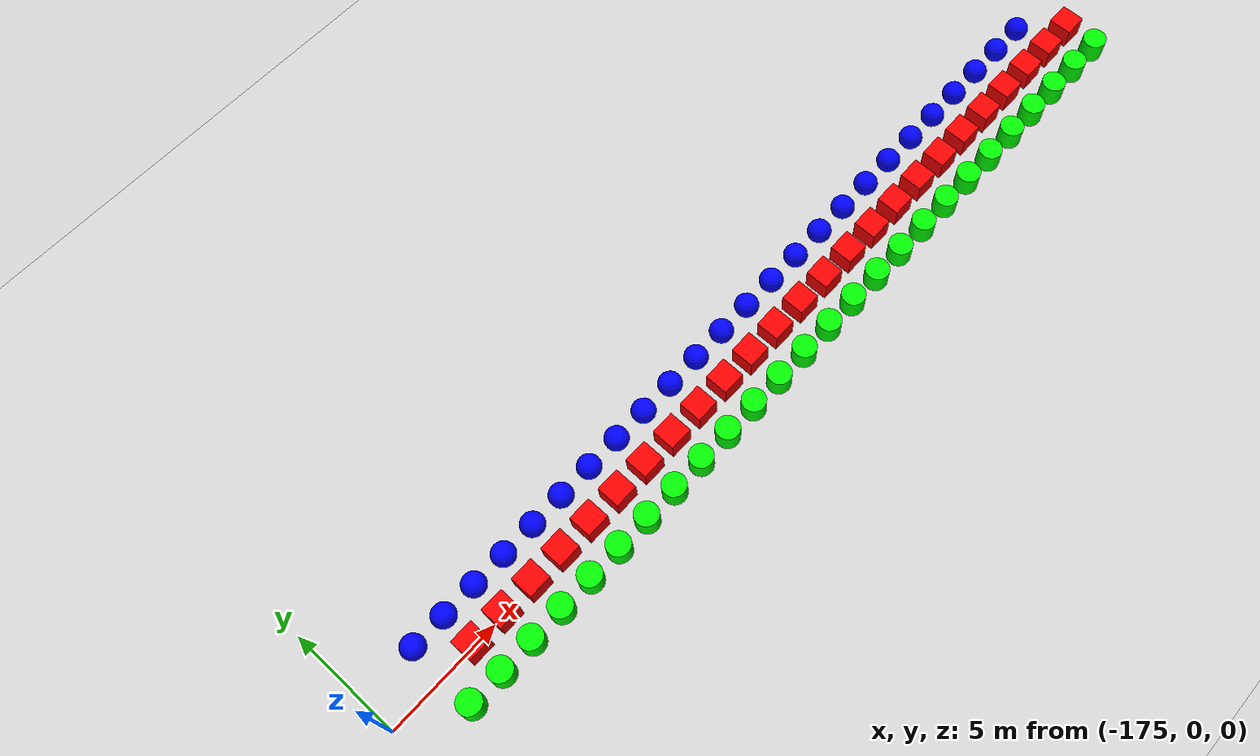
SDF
<sdf version="1.6">
 <world name="shapes">
  <model name="ground_plane">
   <static>true</static>
   <link name="link">
    <collision name="collision">
     <geometry><plane><normal>0 0 1</normal><size>100 100</size></plane></geometry>
    </collision>
    <visual name="visual">
     <geometry><plane><normal>0 0 1</normal><size>100 100</size></plane></geometry>
     <material>
      <ambient>0.8 0.8 0.8 1</ambient>
      <diffuse>0.8 0.8 0.8 1</diffuse>
      <specular>0.8 0.8 0.8 1</specular>
     </material>
    </visual>
   </link>
  </model>
  <model name="cylinder_385">
   <static>false</static>
   <pose>-172.5 -1.5 0.5 0 0 0</pose>
   <link name="cylinder_link">
    <inertial>
     <inertia><ixx>2</ixx><ixy>0</ixy><ixz>0</ixz><iyy>2</iyy><iyz>0</iyz><izz>2</izz></inertia>
     <mass>2.0</mass>
    </inertial>
    <collision name="cylinder_collision">
     <geometry><cylinder><radius>0.5</radius><length>1.0</length></cylinder></geometry>
    </collision>
    <visual name="cylinder_visual">
     <geometry><cylinder><radius>0.5</radius><length>1.0</length></cylinder></geometry>
     <material><ambient>0 1 0 1</ambient><diffuse>0 1 0 1</diffuse><specular>0 1 0 1</specular></material>
    </visual>
   </link>
  </model>
  <model name="sphere_385">
   <static>false</static>
   <pose>-172.5 1.5 0.5 0 0 0</pose>
   <link name="sphere_link">
    <inertial>
     <inertia><ixx>3</ixx><ixy>0</ixy><ixz>0</ixz><iyy>3</iyy><iyz>0</iyz><izz>3</izz></inertia>
     <mass>3.0</mass>
    </inertial>
    <collision name="sphere_collision"><geometry><sphere><radius>0.5</radius></sphere></geometry></collision>
    <visual name="sphere_visual">
     <geometry><sphere><radius>0.5</radius></sphere></geometry>
     <material><ambient>0 0 1 1</ambient><diffuse>0 0 1 1</diffuse><specular>0 0 1 1</specular></material>
    </visual>
   </link>
  </model>
  <model name="box_386">
   <static>false</static>
   <pose>-171.0 0 0.5 0 0 0</pose>
   <link name="box_link">
    <inertial>
     <inertia><ixx>1</ixx><ixy>0</ixy><ixz>0</ixz><iyy>1</iyy><iyz>0</iyz><izz>1</izz></inertia>
     <mass>1.0</mass>
    </inertial>
    <collision name="box_collision"><geometry><box><size>1 1 1</size></box></geometry></collision>
    <visual name="box_visual">
     <geometry><box><size>1 1 1</size></box></geometry>
     <material><ambient>1 0 0 1</ambient><diffuse>1 0 0 1</diffuse><specular>1 0 0 1</specular></material>
    </visual>
   </link>
  </model>
  <model name="cylinder_386">
   <static>false</static>
   <pose>-171.0 -1.5 0.5 0 0 0</pose>
   <link name="cylinder_link">
    <inertial>
     <inertia><ixx>2</ixx><ixy>0</ixy><ixz>0</ixz><iyy>2</iyy><iyz>0</iyz><izz>2</izz></inertia>
     <mass>2.0</mass>
    </inertial>
    <collision name="cylinder_collision">
     <geometry><cylinder><radius>0.5</radius><length>1.0</length></cylinder></geometry>
    </collision>
    <visual name="cylinder_visual">
     <geometry><cylinder><radius>0.5</radius><length>1.0</length></cylinder></geometry>
     <material><ambient>0 1 0 1</ambient><diffuse>0 1 0 1</diffuse><specular>0 1 0 1</specular></material>
    </visual>
   </link>
  </model>
  <model name="sphere_386">
   <static>false</static>
   <pose>-171.0 1.5 0.5 0 0 0</pose>
   <link name="sphere_link">
    <inertial>
     <inertia><ixx>3</ixx><ixy>0</ixy><ixz>0</ixz><iyy>3</iyy><iyz>0</iyz><izz>3</izz></inertia>
     <mass>3.0</mass>
    </inertial>
    <collision name="sphere_collision"><geometry><sphere><radius>0.5</radius></sphere></geometry></collision>
    <visual name="sphere_visual">
     <geometry><sphere><radius>0.5</radius></sphere></geometry>
     <material><ambient>0 0 1 1</ambient><diffuse>0 0 1 1</diffuse><specular>0 0 1 1</specular></material>
    </visual>
   </link>
  </model>
  <model name="box_387">
   <static>false</static>
   <pose>-169.5 0 0.5 0 0 0</pose>
   <link name="box_link">
    <inertial>
     <inertia><ixx>1</ixx><ixy>0</ixy><ixz>0</ixz><iyy>1</iyy><iyz>0</iyz><izz>1</izz></inertia>
     <mass>1.0</mass>
    </inertial>
    <collision name="box_collision"><geometry><box><size>1 1 1</size></box></geometry></collision>
    <visual name="box_visual">
     <geometry><box><size>1 1 1</size></box></geometry>
     <material><ambient>1 0 0 1</ambient><diffuse>1 0 0 1</diffuse><specular>1 0 0 1</specular></material>
    </visual>
   </link>
  </model>
  <model name="cylinder_387">
   <static>false</static>
   <pose>-169.5 -1.5 0.5 0 0 0</pose>
   <link name="cylinder_link">
    <inertial>
     <inertia><ixx>2</ixx><ixy>0</ixy><ixz>0</ixz><iyy>2</iyy><iyz>0</iyz><izz>2</izz></inertia>
     <mass>2.0</mass>
    </inertial>
    <collision name="cylinder_collision">
     <geometry><cylinder><radius>0.5</radius><length>1.0</length></cylinder></geometry>
    </collision>
    <visual name="cylinder_visual">
     <geometry><cylinder><radius>0.5</radius><length>1.0</length></cylinder></geometry>
     <material><ambient>0 1 0 1</ambient><diffuse>0 1 0 1</diffuse><specular>0 1 0 1</specular></material>
    </visual>
   </link>
  </model>
  <model name="sphere_387">
   <static>false</static>
   <pose>-169.5 1.5 0.5 0 0 0</pose>
   <link name="sphere_link">
    <inertial>
     <inertia><ixx>3</ixx><ixy>0</ixy><ixz>0</ixz><iyy>3</iyy><iyz>0</iyz><izz>3</izz></inertia>
     <mass>3.0</mass>
    </inertial>
    <collision name="sphere_collision"><geometry><sphere><radius>0.5</radius></sphere></geometry></collision>
    <visual name="sphere_visual">
     <geometry><sphere><radius>0.5</radius></sphere></geometry>
     <material><ambient>0 0 1 1</ambient><diffuse>0 0 1 1</diffuse><specular>0 0 1 1</specular></material>
    </visual>
   </link>
  </model>
  <model name="box_388">
   <static>false</static>
   <pose>-168.0 0 0.5 0 0 0</pose>
   <link name="box_link">
    <inertial>
     <inertia><ixx>1</ixx><ixy>0</ixy><ixz>0</ixz><iyy>1</iyy><iyz>0</iyz><izz>1</izz></inertia>
     <mass>1.0</mass>
    </inertial>
    <collision name="box_collision"><geometry><box><size>1 1 1</size></box></geometry></collision>
    <visual name="box_visual">
     <geometry><box><size>1 1 1</size></box></geometry>
     <material><ambient>1 0 0 1</ambient><diffuse>1 0 0 1</diffuse><specular>1 0 0 1</specular></material>
    </visual>
   </link>
  </model>
  <model name="cylinder_388">
   <static>false</static>
   <pose>-168.0 -1.5 0.5 0 0 0</pose>
   <link name="cylinder_link">
    <inertial>
     <inertia><ixx>2</ixx><ixy>0</ixy><ixz>0</ixz><iyy>2</iyy><iyz>0</iyz><izz>2</izz></inertia>
     <mass>2.0</mass>
    </inertial>
    <collision name="cylinder_collision">
     <geometry><cylinder><radius>0.5</radius><length>1.0</length></cylinder></geometry>
    </collision>
    <visual name="cylinder_visual">
     <geometry><cylinder><radius>0.5</radius><length>1.0</length></cylinder></geometry>
     <material><ambient>0 1 0 1</ambient><diffuse>0 1 0 1</diffuse><specular>0 1 0 1</specular></material>
    </visual>
   </link>
  </model>
  <model name="sphere_388">
   <static>false</static>
   <pose>-168.0 1.5 0.5 0 0 0</pose>
   <link name="sphere_link">
    <inertial>
     <inertia><ixx>3</ixx><ixy>0</ixy><ixz>0</ixz><iyy>3</iyy><iyz>0</iyz><izz>3</izz></inertia>
     <mass>3.0</mass>
    </inertial>
    <collision name="sphere_collision"><geometry><sphere><radius>0.5</radius></sphere></geometry></collision>
    <visual name="sphere_visual">
     <geometry><sphere><radius>0.5</radius></sphere></geometry>
     <material><ambient>0 0 1 1</ambient><diffuse>0 0 1 1</diffuse><specular>0 0 1 1</specular></material>
    </visual>
   </link>
  </model>
  <model name="box_389">
   <static>false</static>
   <pose>-166.5 0 0.5 0 0 0</pose>
   <link name="box_link">
    <inertial>
     <inertia><ixx>1</ixx><ixy>0</ixy><ixz>0</ixz><iyy>1</iyy><iyz>0</iyz><izz>1</izz></inertia>
     <mass>1.0</mass>
    </inertial>
    <collision name="box_collision"><geometry><box><size>1 1 1</size></box></geometry></collision>
    <visual name="box_visual">
     <geometry><box><size>1 1 1</size></box></geometry>
     <material><ambient>1 0 0 1</ambient><diffuse>1 0 0 1</diffuse><specular>1 0 0 1</specular></material>
    </visual>
   </link>
  </model>
  <model name="cylinder_389">
   <static>false</static>
   <pose>-166.5 -1.5 0.5 0 0 0</pose>
   <link name="cylinder_link">
    <inertial>
     <inertia><ixx>2</ixx><ixy>0</ixy><ixz>0</ixz><iyy>2</iyy><iyz>0</iyz><izz>2</izz></inertia>
     <mass>2.0</mass>
    </inertial>
    <collision name="cylinder_collision">
     <geometry><cylinder><radius>0.5</radius><length>1.0</length></cylinder></geometry>
    </collision>
    <visual name="cylinder_visual">
     <geometry><cylinder><radius>0.5</radius><length>1.0</length></cylinder></geometry>
     <material><ambient>0 1 0 1</ambient><diffuse>0 1 0 1</diffuse><specular>0 1 0 1</specular></material>
    </visual>
   </link>
  </model>
  <model name="sphere_389">
   <static>false</static>
   <pose>-166.5 1.5 0.5 0 0 0</pose>
   <link name="sphere_link">
    <inertial>
     <inertia><ixx>3</ixx><ixy>0</ixy><ixz>0</ixz><iyy>3</iyy><iyz>0</iyz><izz>3</izz></inertia>
     <mass>3.0</mass>
    </inertial>
    <collision name="sphere_collision"><geometry><sphere><radius>0.5</radius></sphere></geometry></collision>
    <visual name="sphere_visual">
     <geometry><sphere><radius>0.5</radius></sphere></geometry>
     <material><ambient>0 0 1 1</ambient><diffuse>0 0 1 1</diffuse><specular>0 0 1 1</specular></material>
    </visual>
   </link>
  </model>
  <model name="box_390">
   <static>false</static>
   <pose>-165.0 0 0.5 0 0 0</pose>
   <link name="box_link">
    <inertial>
     <inertia><ixx>1</ixx><ixy>0</ixy><ixz>0</ixz><iyy>1</iyy><iyz>0</iyz><izz>1</izz></inertia>
     <mass>1.0</mass>
    </inertial>
    <collision name="box_collision"><geometry><box><size>1 1 1</size></box></geometry></collision>
    <visual name="box_visual">
     <geometry><box><size>1 1 1</size></box></geometry>
     <material><ambient>1 0 0 1</ambient><diffuse>1 0 0 1</diffuse><specular>1 0 0 1</specular></material>
    </visual>
   </link>
  </model>
  <model name="cylinder_390">
   <static>false</static>
   <pose>-165.0 -1.5 0.5 0 0 0</pose>
   <link name="cylinder_link">
    <inertial>
     <inertia><ixx>2</ixx><ixy>0</ixy><ixz>0</ixz><iyy>2</iyy><iyz>0</iyz><izz>2</izz></inertia>
     <mass>2.0</mass>
    </inertial>
    <collision name="cylinder_collision">
     <geometry><cylinder><radius>0.5</radius><length>1.0</length></cylinder></geometry>
    </collision>
    <visual name="cylinder_visual">
     <geometry><cylinder><radius>0.5</radius><length>1.0</length></cylinder></geometry>
     <material><ambient>0 1 0 1</ambient><diffuse>0 1 0 1</diffuse><specular>0 1 0 1</specular></material>
    </visual>
   </link>
  </model>
  <model name="sphere_390">
   <static>false</static>
   <pose>-165.0 1.5 0.5 0 0 0</pose>
   <link name="sphere_link">
    <inertial>
     <inertia><ixx>3</ixx><ixy>0</ixy><ixz>0</ixz><iyy>3</iyy><iyz>0</iyz><izz>3</izz></inertia>
     <mass>3.0</mass>
    </inertial>
    <collision name="sphere_collision"><geometry><sphere><radius>0.5</radius></sphere></geometry></collision>
    <visual name="sphere_visual">
     <geometry><sphere><radius>0.5</radius></sphere></geometry>
     <material><ambient>0 0 1 1</ambient><diffuse>0 0 1 1</diffuse><specular>0 0 1 1</specular></material>
    </visual>
   </link>
  </model>
  <model name="box_391">
   <static>false</static>
   <pose>-163.5 0 0.5 0 0 0</pose>
   <link name="box_link">
    <inertial>
     <inertia><ixx>1</ixx><ixy>0</ixy><ixz>0</ixz><iyy>1</iyy><iyz>0</iyz><izz>1</izz></inertia>
     <mass>1.0</mass>
    </inertial>
    <collision name="box_collision"><geometry><box><size>1 1 1</size></box></geometry></collision>
    <visual name="box_visual">
     <geometry><box><size>1 1 1</size></box></geometry>
     <material><ambient>1 0 0 1</ambient><diffuse>1 0 0 1</diffuse><specular>1 0 0 1</specular></material>
    </visual>
   </link>
  </model>
  <model name="cylinder_391">
   <static>false</static>
   <pose>-163.5 -1.5 0.5 0 0 0</pose>
   <link name="cylinder_link">
    <inertial>
     <inertia><ixx>2</ixx><ixy>0</ixy><ixz>0</ixz><iyy>2</iyy><iyz>0</iyz><izz>2</izz></inertia>
     <mass>2.0</mass>
    </inertial>
    <collision name="cylinder_collision">
     <geometry><cylinder><radius>0.5</radius><length>1.0</length></cylinder></geometry>
    </collision>
    <visual name="cylinder_visual">
     <geometry><cylinder><radius>0.5</radius><length>1.0</length></cylinder></geometry>
     <material><ambient>0 1 0 1</ambient><diffuse>0 1 0 1</diffuse><specular>0 1 0 1</specular></material>
    </visual>
   </link>
  </model>
  <model name="sphere_391">
   <static>false</static>
   <pose>-163.5 1.5 0.5 0 0 0</pose>
   <link name="sphere_link">
    <inertial>
     <inertia><ixx>3</ixx><ixy>0</ixy><ixz>0</ixz><iyy>3</iyy><iyz>0</iyz><izz>3</izz></inertia>
     <mass>3.0</mass>
    </inertial>
    <collision name="sphere_collision"><geometry><sphere><radius>0.5</radius></sphere></geometry></collision>
    <visual name="sphere_visual">
     <geometry><sphere><radius>0.5</radius></sphere></geometry>
     <material><ambient>0 0 1 1</ambient><diffuse>0 0 1 1</diffuse><specular>0 0 1 1</specular></material>
    </visual>
   </link>
  </model>
  <model name="box_392">
   <static>false</static>
   <pose>-162.0 0 0.5 0 0 0</pose>
   <link name="box_link">
    <inertial>
     <inertia><ixx>1</ixx><ixy>0</ixy><ixz>0</ixz><iyy>1</iyy><iyz>0</iyz><izz>1</izz></inertia>
     <mass>1.0</mass>
    </inertial>
    <collision name="box_collision"><geometry><box><size>1 1 1</size></box></geometry></collision>
    <visual name="box_visual">
     <geometry><box><size>1 1 1</size></box></geometry>
     <material><ambient>1 0 0 1</ambient><diffuse>1 0 0 1</diffuse><specular>1 0 0 1</specular></material>
    </visual>
   </link>
  </model>
  <model name="cylinder_392">
   <static>false</static>
   <pose>-162.0 -1.5 0.5 0 0 0</pose>
   <link name="cylinder_link">
    <inertial>
     <inertia><ixx>2</ixx><ixy>0</ixy><ixz>0</ixz><iyy>2</iyy><iyz>0</iyz><izz>2</izz></inertia>
     <mass>2.0</mass>
    </inertial>
    <collision name="cylinder_collision">
     <geometry><cylinder><radius>0.5</radius><length>1.0</length></cylinder></geometry>
    </collision>
    <visual name="cylinder_visual">
     <geometry><cylinder><radius>0.5</radius><length>1.0</length></cylinder></geometry>
     <material><ambient>0 1 0 1</ambient><diffuse>0 1 0 1</diffuse><specular>0 1 0 1</specular></material>
    </visual>
   </link>
  </model>
  <model name="sphere_392">
   <static>false</static>
   <pose>-162.0 1.5 0.5 0 0 0</pose>
   <link name="sphere_link">
    <inertial>
     <inertia><ixx>3</ixx><ixy>0</ixy><ixz>0</ixz><iyy>3</iyy><iyz>0</iyz><izz>3</izz></inertia>
     <mass>3.0</mass>
    </inertial>
    <collision name="sphere_collision"><geometry><sphere><radius>0.5</radius></sphere></geometry></collision>
    <visual name="sphere_visual">
     <geometry><sphere><radius>0.5</radius></sphere></geometry>
     <material><ambient>0 0 1 1</ambient><diffuse>0 0 1 1</diffuse><specular>0 0 1 1</specular></material>
    </visual>
   </link>
  </model>
  <model name="box_393">
   <static>false</static>
   <pose>-160.5 0 0.5 0 0 0</pose>
   <link name="box_link">
    <inertial>
     <inertia><ixx>1</ixx><ixy>0</ixy><ixz>0</ixz><iyy>1</iyy><iyz>0</iyz><izz>1</izz></inertia>
     <mass>1.0</mass>
    </inertial>
    <collision name="box_collision"><geometry><box><size>1 1 1</size></box></geometry></collision>
    <visual name="box_visual">
     <geometry><box><size>1 1 1</size></box></geometry>
     <material><ambient>1 0 0 1</ambient><diffuse>1 0 0 1</diffuse><specular>1 0 0 1</specular></material>
    </visual>
   </link>
  </model>
  <model name="cylinder_393">
   <static>false</static>
   <pose>-160.5 -1.5 0.5 0 0 0</pose>
   <link name="cylinder_link">
    <inertial>
     <inertia><ixx>2</ixx><ixy>0</ixy><ixz>0</ixz><iyy>2</iyy><iyz>0</iyz><izz>2</izz></inertia>
     <mass>2.0</mass>
    </inertial>
    <collision name="cylinder_collision">
     <geometry><cylinder><radius>0.5</radius><length>1.0</length></cylinder></geometry>
    </collision>
    <visual name="cylinder_visual">
     <geometry><cylinder><radius>0.5</radius><length>1.0</length></cylinder></geometry>
     <material><ambient>0 1 0 1</ambient><diffuse>0 1 0 1</diffuse><specular>0 1 0 1</specular></material>
    </visual>
   </link>
  </model>
  <model name="sphere_393">
   <static>false</static>
   <pose>-160.5 1.5 0.5 0 0 0</pose>
   <link name="sphere_link">
    <inertial>
     <inertia><ixx>3</ixx><ixy>0</ixy><ixz>0</ixz><iyy>3</iyy><iyz>0</iyz><izz>3</izz></inertia>
     <mass>3.0</mass>
    </inertial>
    <collision name="sphere_collision"><geometry><sphere><radius>0.5</radius></sphere></geometry></collision>
    <visual name="sphere_visual">
     <geometry><sphere><radius>0.5</radius></sphere></geometry>
     <material><ambient>0 0 1 1</ambient><diffuse>0 0 1 1</diffuse><specular>0 0 1 1</specular></material>
    </visual>
   </link>
  </model>
  <model name="box_394">
   <static>false</static>
   <pose>-159.0 0 0.5 0 0 0</pose>
   <link name="box_link">
    <inertial>
     <inertia><ixx>1</ixx><ixy>0</ixy><ixz>0</ixz><iyy>1</iyy><iyz>0</iyz><izz>1</izz></inertia>
     <mass>1.0</mass>
    </inertial>
    <collision name="box_collision"><geometry><box><size>1 1 1</size></box></geometry></collision>
    <visual name="box_visual">
     <geometry><box><size>1 1 1</size></box></geometry>
     <material><ambient>1 0 0 1</ambient><diffuse>1 0 0 1</diffuse><specular>1 0 0 1</specular></material>
    </visual>
   </link>
  </model>
  <model name="cylinder_394">
   <static>false</static>
   <pose>-159.0 -1.5 0.5 0 0 0</pose>
   <link name="cylinder_link">
    <inertial>
     <inertia><ixx>2</ixx><ixy>0</ixy><ixz>0</ixz><iyy>2</iyy><iyz>0</iyz><izz>2</izz></inertia>
     <mass>2.0</mass>
    </inertial>
    <collision name="cylinder_collision">
     <geometry><cylinder><radius>0.5</radius><length>1.0</length></cylinder></geometry>
    </collision>
    <visual name="cylinder_visual">
     <geometry><cylinder><radius>0.5</radius><length>1.0</length></cylinder></geometry>
     <material><ambient>0 1 0 1</ambient><diffuse>0 1 0 1</diffuse><specular>0 1 0 1</specular></material>
    </visual>
   </link>
  </model>
  <model name="sphere_394">
   <static>false</static>
   <pose>-159.0 1.5 0.5 0 0 0</pose>
   <link name="sphere_link">
    <inertial>
     <inertia><ixx>3</ixx><ixy>0</ixy><ixz>0</ixz><iyy>3</iyy><iyz>0</iyz><izz>3</izz></inertia>
     <mass>3.0</mass>
    </inertial>
    <collision name="sphere_collision"><geometry><sphere><radius>0.5</radius></sphere></geometry></collision>
    <visual name="sphere_visual">
     <geometry><sphere><radius>0.5</radius></sphere></geometry>
     <material><ambient>0 0 1 1</ambient><diffuse>0 0 1 1</diffuse><specular>0 0 1 1</specular></material>
    </visual>
   </link>
  </model>
  <model name="box_395">
   <static>false</static>
   <pose>-157.5 0 0.5 0 0 0</pose>
   <link name="box_link">
    <inertial>
     <inertia><ixx>1</ixx><ixy>0</ixy><ixz>0</ixz><iyy>1</iyy><iyz>0</iyz><izz>1</izz></inertia>
     <mass>1.0</mass>
    </inertial>
    <collision name="box_collision"><geometry><box><size>1 1 1</size></box></geometry></collision>
    <visual name="box_visual">
     <geometry><box><size>1 1 1</size></box></geometry>
     <material><ambient>1 0 0 1</ambient><diffuse>1 0 0 1</diffuse><specular>1 0 0 1</specular></material>
    </visual>
   </link>
  </model>
  <model name="cylinder_395">
   <static>false</static>
   <pose>-157.5 -1.5 0.5 0 0 0</pose>
   <link name="cylinder_link">
    <inertial>
     <inertia><ixx>2</ixx><ixy>0</ixy><ixz>0</ixz><iyy>2</iyy><iyz>0</iyz><izz>2</izz></inertia>
     <mass>2.0</mass>
    </inertial>
    <collision name="cylinder_collision">
     <geometry><cylinder><radius>0.5</radius><length>1.0</length></cylinder></geometry>
    </collision>
    <visual name="cylinder_visual">
     <geometry><cylinder><radius>0.5</radius><length>1.0</length></cylinder></geometry>
     <material><ambient>0 1 0 1</ambient><diffuse>0 1 0 1</diffuse><specular>0 1 0 1</specular></material>
    </visual>
   </link>
  </model>
  <model name="sphere_395">
   <static>false</static>
   <pose>-157.5 1.5 0.5 0 0 0</pose>
   <link name="sphere_link">
    <inertial>
     <inertia><ixx>3</ixx><ixy>0</ixy><ixz>0</ixz><iyy>3</iyy><iyz>0</iyz><izz>3</izz></inertia>
     <mass>3.0</mass>
    </inertial>
    <collision name="sphere_collision"><geometry><sphere><radius>0.5</radius></sphere></geometry></collision>
    <visual name="sphere_visual">
     <geometry><sphere><radius>0.5</radius></sphere></geometry>
     <material><ambient>0 0 1 1</ambient><diffuse>0 0 1 1</diffuse><specular>0 0 1 1</specular></material>
    </visual>
   </link>
  </model>
  <model name="box_396">
   <static>false</static>
   <pose>-156.0 0 0.5 0 0 0</pose>
   <link name="box_link">
    <inertial>
     <inertia><ixx>1</ixx><ixy>0</ixy><ixz>0</ixz><iyy>1</iyy><iyz>0</iyz><izz>1</izz></inertia>
     <mass>1.0</mass>
    </inertial>
    <collision name="box_collision"><geometry><box><size>1 1 1</size></box></geometry></collision>
    <visual name="box_visual">
     <geometry><box><size>1 1 1</size></box></geometry>
     <material><ambient>1 0 0 1</ambient><diffuse>1 0 0 1</diffuse><specular>1 0 0 1</specular></material>
    </visual>
   </link>
  </model>
  <model name="cylinder_396">
   <static>false</static>
   <pose>-156.0 -1.5 0.5 0 0 0</pose>
   <link name="cylinder_link">
    <inertial>
     <inertia><ixx>2</ixx><ixy>0</ixy><ixz>0</ixz><iyy>2</iyy><iyz>0</iyz><izz>2</izz></inertia>
     <mass>2.0</mass>
    </inertial>
    <collision name="cylinder_collision">
     <geometry><cylinder><radius>0.5</radius><length>1.0</length></cylinder></geometry>
    </collision>
    <visual name="cylinder_visual">
     <geometry><cylinder><radius>0.5</radius><length>1.0</length></cylinder></geometry>
     <material><ambient>0 1 0 1</ambient><diffuse>0 1 0 1</diffuse><specular>0 1 0 1</specular></material>
    </visual>
   </link>
  </model>
  <model name="sphere_396">
   <static>false</static>
   <pose>-156.0 1.5 0.5 0 0 0</pose>
   <link name="sphere_link">
    <inertial>
     <inertia><ixx>3</ixx><ixy>0</ixy><ixz>0</ixz><iyy>3</iyy><iyz>0</iyz><izz>3</izz></inertia>
     <mass>3.0</mass>
    </inertial>
    <collision name="sphere_collision"><geometry><sphere><radius>0.5</radius></sphere></geometry></collision>
    <visual name="sphere_visual">
     <geometry><sphere><radius>0.5</radius></sphere></geometry>
     <material><ambient>0 0 1 1</ambient><diffuse>0 0 1 1</diffuse><specular>0 0 1 1</specular></material>
    </visual>
   </link>
  </model>
  <model name="box_397">
   <static>false</static>
   <pose>-154.5 0 0.5 0 0 0</pose>
   <link name="box_link">
    <inertial>
     <inertia><ixx>1</ixx><ixy>0</ixy><ixz>0</ixz><iyy>1</iyy><iyz>0</iyz><izz>1</izz></inertia>
     <mass>1.0</mass>
    </inertial>
    <collision name="box_collision"><geometry><box><size>1 1 1</size></box></geometry></collision>
    <visual name="box_visual">
     <geometry><box><size>1 1 1</size></box></geometry>
     <material><ambient>1 0 0 1</ambient><diffuse>1 0 0 1</diffuse><specular>1 0 0 1</specular></material>
    </visual>
   </link>
  </model>
  <model name="cylinder_397">
   <static>false</static>
   <pose>-154.5 -1.5 0.5 0 0 0</pose>
   <link name="cylinder_link">
    <inertial>
     <inertia><ixx>2</ixx><ixy>0</ixy><ixz>0</ixz><iyy>2</iyy><iyz>0</iyz><izz>2</izz></inertia>
     <mass>2.0</mass>
    </inertial>
    <collision name="cylinder_collision">
     <geometry><cylinder><radius>0.5</radius><length>1.0</length></cylinder></geometry>
    </collision>
    <visual name="cylinder_visual">
     <geometry><cylinder><radius>0.5</radius><length>1.0</length></cylinder></geometry>
     <material><ambient>0 1 0 1</ambient><diffuse>0 1 0 1</diffuse><specular>0 1 0 1</specular></material>
    </visual>
   </link>
  </model>
  <model name="sphere_397">
   <static>false</static>
   <pose>-154.5 1.5 0.5 0 0 0</pose>
   <link name="sphere_link">
    <inertial>
     <inertia><ixx>3</ixx><ixy>0</ixy><ixz>0</ixz><iyy>3</iyy><iyz>0</iyz><izz>3</izz></inertia>
     <mass>3.0</mass>
    </inertial>
    <collision name="sphere_collision"><geometry><sphere><radius>0.5</radius></sphere></geometry></collision>
    <visual name="sphere_visual">
     <geometry><sphere><radius>0.5</radius></sphere></geometry>
     <material><ambient>0 0 1 1</ambient><diffuse>0 0 1 1</diffuse><specular>0 0 1 1</specular></material>
    </visual>
   </link>
  </model>
  <model name="box_398">
   <static>false</static>
   <pose>-153.0 0 0.5 0 0 0</pose>
   <link name="box_link">
    <inertial>
     <inertia><ixx>1</ixx><ixy>0</ixy><ixz>0</ixz><iyy>1</iyy><iyz>0</iyz><izz>1</izz></inertia>
     <mass>1.0</mass>
    </inertial>
    <collision name="box_collision"><geometry><box><size>1 1 1</size></box></geometry></collision>
    <visual name="box_visual">
     <geometry><box><size>1 1 1</size></box></geometry>
     <material><ambient>1 0 0 1</ambient><diffuse>1 0 0 1</diffuse><specular>1 0 0 1</specular></material>
    </visual>
   </link>
  </model>
  <model name="cylinder_398">
   <static>false</static>
   <pose>-153.0 -1.5 0.5 0 0 0</pose>
   <link name="cylinder_link">
    <inertial>
     <inertia><ixx>2</ixx><ixy>0</ixy><ixz>0</ixz><iyy>2</iyy><iyz>0</iyz><izz>2</izz></inertia>
     <mass>2.0</mass>
    </inertial>
    <collision name="cylinder_collision">
     <geometry><cylinder><radius>0.5</radius><length>1.0</length></cylinder></geometry>
    </collision>
    <visual name="cylinder_visual">
     <geometry><cylinder><radius>0.5</radius><length>1.0</length></cylinder></geometry>
     <material><ambient>0 1 0 1</ambient><diffuse>0 1 0 1</diffuse><specular>0 1 0 1</specular></material>
    </visual>
   </link>
  </model>
  <model name="sphere_398">
   <static>false</static>
   <pose>-153.0 1.5 0.5 0 0 0</pose>
   <link name="sphere_link">
    <inertial>
     <inertia><ixx>3</ixx><ixy>0</ixy><ixz>0</ixz><iyy>3</iyy><iyz>0</iyz><izz>3</izz></inertia>
     <mass>3.0</mass>
    </inertial>
    <collision name="sphere_collision"><geometry><sphere><radius>0.5</radius></sphere></geometry></collision>
    <visual name="sphere_visual">
     <geometry><sphere><radius>0.5</radius></sphere></geometry>
     <material><ambient>0 0 1 1</ambient><diffuse>0 0 1 1</diffuse><specular>0 0 1 1</specular></material>
    </visual>
   </link>
  </model>
  <model name="box_399">
   <static>false</static>
   <pose>-151.5 0 0.5 0 0 0</pose>
   <link name="box_link">
    <inertial>
     <inertia><ixx>1</ixx><ixy>0</ixy><ixz>0</ixz><iyy>1</iyy><iyz>0</iyz><izz>1</izz></inertia>
     <mass>1.0</mass>
    </inertial>
    <collision name="box_collision"><geometry><box><size>1 1 1</size></box></geometry></collision>
    <visual name="box_visual">
     <geometry><box><size>1 1 1</size></box></geometry>
     <material><ambient>1 0 0 1</ambient><diffuse>1 0 0 1</diffuse><specular>1 0 0 1</specular></material>
    </visual>
   </link>
  </model>
  <model name="cylinder_399">
   <static>false</static>
   <pose>-151.5 -1.5 0.5 0 0 0</pose>
   <link name="cylinder_link">
    <inertial>
     <inertia><ixx>2</ixx><ixy>0</ixy><ixz>0</ixz><iyy>2</iyy><iyz>0</iyz><izz>2</izz></inertia>
     <mass>2.0</mass>
    </inertial>
    <collision name="cylinder_collision">
     <geometry><cylinder><radius>0.5</radius><length>1.0</length></cylinder></geometry>
    </collision>
    <visual name="cylinder_visual">
     <geometry><cylinder><radius>0.5</radius><length>1.0</length></cylinder></geometry>
     <material><ambient>0 1 0 1</ambient><diffuse>0 1 0 1</diffuse><specular>0 1 0 1</specular></material>
    </visual>
   </link>
  </model>
  <model name="sphere_399">
   <static>false</static>
   <pose>-151.5 1.5 0.5 0 0 0</pose>
   <link name="sphere_link">
    <inertial>
     <inertia><ixx>3</ixx><ixy>0</ixy><ixz>0</ixz><iyy>3</iyy><iyz>0</iyz><izz>3</izz></inertia>
     <mass>3.0</mass>
    </inertial>
    <collision name="sphere_collision"><geometry><sphere><radius>0.5</radius></sphere></geometry></collision>
    <visual name="sphere_visual">
     <geometry><sphere><radius>0.5</radius></sphere></geometry>
     <material><ambient>0 0 1 1</ambient><diffuse>0 0 1 1</diffuse><specular>0 0 1 1</specular></material>
    </visual>
   </link>
  </model>
  <model name="box_400">
   <static>false</static>
   <pose>-150.0 0 0.5 0 0 0</pose>
   <link name="box_link">
    <inertial>
     <inertia><ixx>1</ixx><ixy>0</ixy><ixz>0</ixz><iyy>1</iyy><iyz>0</iyz><izz>1</izz></inertia>
     <mass>1.0</mass>
    </inertial>
    <collision name="box_collision"><geometry><box><size>1 1 1</size></box></geometry></collision>
    <visual name="box_visual">
     <geometry><box><size>1 1 1</size></box></geometry>
     <material><ambient>1 0 0 1</ambient><diffuse>1 0 0 1</diffuse><specular>1 0 0 1</specular></material>
    </visual>
   </link>
  </model>
  <model name="cylinder_400">
   <static>false</static>
   <pose>-150.0 -1.5 0.5 0 0 0</pose>
   <link name="cylinder_link">
    <inertial>
     <inertia><ixx>2</ixx><ixy>0</ixy><ixz>0</ixz><iyy>2</iyy><iyz>0</iyz><izz>2</izz></inertia>
     <mass>2.0</mass>
    </inertial>
    <collision name="cylinder_collision">
     <geometry><cylinder><radius>0.5</radius><length>1.0</length></cylinder></geometry>
    </collision>
    <visual name="cylinder_visual">
     <geometry><cylinder><radius>0.5</radius><length>1.0</length></cylinder></geometry>
     <material><ambient>0 1 0 1</ambient><diffuse>0 1 0 1</diffuse><specular>0 1 0 1</specular></material>
    </visual>
   </link>
  </model>
  <model name="sphere_400">
   <static>false</static>
   <pose>-150.0 1.5 0.5 0 0 0</pose>
   <link name="sphere_link">
    <inertial>
     <inertia><ixx>3</ixx><ixy>0</ixy><ixz>0</ixz><iyy>3</iyy><iyz>0</iyz><izz>3</izz></inertia>
     <mass>3.0</mass>
    </inertial>
    <collision name="sphere_collision"><geometry><sphere><radius>0.5</radius></sphere></geometry></collision>
    <visual name="sphere_visual">
     <geometry><sphere><radius>0.5</radius></sphere></geometry>
     <material><ambient>0 0 1 1</ambient><diffuse>0 0 1 1</diffuse><specular>0 0 1 1</specular></material>
    </visual>
   </link>
  </model>
  <model name="box_401">
   <static>false</static>
   <pose>-148.5 0 0.5 0 0 0</pose>
   <link name="box_link">
    <inertial>
     <inertia><ixx>1</ixx><ixy>0</ixy><ixz>0</ixz><iyy>1</iyy><iyz>0</iyz><izz>1</izz></inertia>
     <mass>1.0</mass>
    </inertial>
    <collision name="box_collision"><geometry><box><size>1 1 1</size></box></geometry></collision>
    <visual name="box_visual">
     <geometry><box><size>1 1 1</size></box></geometry>
     <material><ambient>1 0 0 1</ambient><diffuse>1 0 0 1</diffuse><specular>1 0 0 1</specular></material>
    </visual>
   </link>
  </model>
  <model name="cylinder_401">
   <static>false</static>
   <pose>-148.5 -1.5 0.5 0 0 0</pose>
   <link name="cylinder_link">
    <inertial>
     <inertia><ixx>2</ixx><ixy>0</ixy><ixz>0</ixz><iyy>2</iyy><iyz>0</iyz><izz>2</izz></inertia>
     <mass>2.0</mass>
    </inertial>
    <collision name="cylinder_collision">
     <geometry><cylinder><radius>0.5</radius><length>1.0</length></cylinder></geometry>
    </collision>
    <visual name="cylinder_visual">
     <geometry><cylinder><radius>0.5</radius><length>1.0</length></cylinder></geometry>
     <material><ambient>0 1 0 1</ambient><diffuse>0 1 0 1</diffuse><specular>0 1 0 1</specular></material>
    </visual>
   </link>
  </model>
  <model name="sphere_401">
   <static>false</static>
   <pose>-148.5 1.5 0.5 0 0 0</pose>
   <link name="sphere_link">
    <inertial>
     <inertia><ixx>3</ixx><ixy>0</ixy><ixz>0</ixz><iyy>3</iyy><iyz>0</iyz><izz>3</izz></inertia>
     <mass>3.0</mass>
    </inertial>
    <collision name="sphere_collision"><geometry><sphere><radius>0.5</radius></sphere></geometry></collision>
    <visual name="sphere_visual">
     <geometry><sphere><radius>0.5</radius></sphere></geometry>
     <material><ambient>0 0 1 1</ambient><diffuse>0 0 1 1</diffuse><specular>0 0 1 1</specular></material>
    </visual>
   </link>
  </model>
  <model name="box_402">
   <static>false</static>
   <pose>-147.0 0 0.5 0 0 0</pose>
   <link name="box_link">
    <inertial>
     <inertia><ixx>1</ixx><ixy>0</ixy><ixz>0</ixz><iyy>1</iyy><iyz>0</iyz><izz>1</izz></inertia>
     <mass>1.0</mass>
    </inertial>
    <collision name="box_collision"><geometry><box><size>1 1 1</size></box></geometry></collision>
    <visual name="box_visual">
     <geometry><box><size>1 1 1</size></box></geometry>
     <material><ambient>1 0 0 1</ambient><diffuse>1 0 0 1</diffuse><specular>1 0 0 1</specular></material>
    </visual>
   </link>
  </model>
  <model name="cylinder_402">
   <static>false</static>
   <pose>-147.0 -1.5 0.5 0 0 0</pose>
   <link name="cylinder_link">
    <inertial>
     <inertia><ixx>2</ixx><ixy>0</ixy><ixz>0</ixz><iyy>2</iyy><iyz>0</iyz><izz>2</izz></inertia>
     <mass>2.0</mass>
    </inertial>
    <collision name="cylinder_collision">
     <geometry><cylinder><radius>0.5</radius><length>1.0</length></cylinder></geometry>
    </collision>
    <visual name="cylinder_visual">
     <geometry><cylinder><radius>0.5</radius><length>1.0</length></cylinder></geometry>
     <material><ambient>0 1 0 1</ambient><diffuse>0 1 0 1</diffuse><specular>0 1 0 1</specular></material>
    </visual>
   </link>
  </model>
  <model name="sphere_402">
   <static>false</static>
   <pose>-147.0 1.5 0.5 0 0 0</pose>
   <link name="sphere_link">
    <inertial>
     <inertia><ixx>3</ixx><ixy>0</ixy><ixz>0</ixz><iyy>3</iyy><iyz>0</iyz><izz>3</izz></inertia>
     <mass>3.0</mass>
    </inertial>
    <collision name="sphere_collision"><geometry><sphere><radius>0.5</radius></sphere></geometry></collision>
    <visual name="sphere_visual">
     <geometry><sphere><radius>0.5</radius></sphere></geometry>
     <material><ambient>0 0 1 1</ambient><diffuse>0 0 1 1</diffuse><specular>0 0 1 1</specular></material>
    </visual>
   </link>
  </model>
  <model name="box_403">
   <static>false</static>
   <pose>-145.5 0 0.5 0 0 0</pose>
   <link name="box_link">
    <inertial>
     <inertia><ixx>1</ixx><ixy>0</ixy><ixz>0</ixz><iyy>1</iyy><iyz>0</iyz><izz>1</izz></inertia>
     <mass>1.0</mass>
    </inertial>
    <collision name="box_collision"><geometry><box><size>1 1 1</size></box></geometry></collision>
    <visual name="box_visual">
     <geometry><box><size>1 1 1</size></box></geometry>
     <material><ambient>1 0 0 1</ambient><diffuse>1 0 0 1</diffuse><specular>1 0 0 1</specular></material>
    </visual>
   </link>
  </model>
  <model name="cylinder_403">
   <static>false</static>
   <pose>-145.5 -1.5 0.5 0 0 0</pose>
   <link name="cylinder_link">
    <inertial>
     <inertia><ixx>2</ixx><ixy>0</ixy><ixz>0</ixz><iyy>2</iyy><iyz>0</iyz><izz>2</izz></inertia>
     <mass>2.0</mass>
    </inertial>
    <collision name="cylinder_collision">
     <geometry><cylinder><radius>0.5</radius><length>1.0</length></cylinder></geometry>
    </collision>
    <visual name="cylinder_visual">
     <geometry><cylinder><radius>0.5</radius><length>1.0</length></cylinder></geometry>
     <material><ambient>0 1 0 1</ambient><diffuse>0 1 0 1</diffuse><specular>0 1 0 1</specular></material>
    </visual>
   </link>
  </model>
  <model name="sphere_403">
   <static>false</static>
   <pose>-145.5 1.5 0.5 0 0 0</pose>
   <link name="sphere_link">
    <inertial>
     <inertia><ixx>3</ixx><ixy>0</ixy><ixz>0</ixz><iyy>3</iyy><iyz>0</iyz><izz>3</izz></inertia>
     <mass>3.0</mass>
    </inertial>
    <collision name="sphere_collision"><geometry><sphere><radius>0.5</radius></sphere></geometry></collision>
    <visual name="sphere_visual">
     <geometry><sphere><radius>0.5</radius></sphere></geometry>
     <material><ambient>0 0 1 1</ambient><diffuse>0 0 1 1</diffuse><specular>0 0 1 1</specular></material>
    </visual>
   </link>
  </model>
  <model name="box_404">
   <static>false</static>
   <pose>-144.0 0 0.5 0 0 0</pose>
   <link name="box_link">
    <inertial>
     <inertia><ixx>1</ixx><ixy>0</ixy><ixz>0</ixz><iyy>1</iyy><iyz>0</iyz><izz>1</izz></inertia>
     <mass>1.0</mass>
    </inertial>
    <collision name="box_collision"><geometry><box><size>1 1 1</size></box></geometry></collision>
    <visual name="box_visual">
     <geometry><box><size>1 1 1</size></box></geometry>
     <material><ambient>1 0 0 1</ambient><diffuse>1 0 0 1</diffuse><specular>1 0 0 1</specular></material>
    </visual>
   </link>
  </model>
  <model name="cylinder_404">
   <static>false</static>
   <pose>-144.0 -1.5 0.5 0 0 0</pose>
   <link name="cylinder_link">
    <inertial>
     <inertia><ixx>2</ixx><ixy>0</ixy><ixz>0</ixz><iyy>2</iyy><iyz>0</iyz><izz>2</izz></inertia>
     <mass>2.0</mass>
    </inertial>
    <collision name="cylinder_collision">
     <geometry><cylinder><radius>0.5</radius><length>1.0</length></cylinder></geometry>
    </collision>
    <visual name="cylinder_visual">
     <geometry><cylinder><radius>0.5</radius><length>1.0</length></cylinder></geometry>
     <material><ambient>0 1 0 1</ambient><diffuse>0 1 0 1</diffuse><specular>0 1 0 1</specular></material>
    </visual>
   </link>
  </model>
  <model name="sphere_404">
   <static>false</static>
   <pose>-144.0 1.5 0.5 0 0 0</pose>
   <link name="sphere_link">
    <inertial>
     <inertia><ixx>3</ixx><ixy>0</ixy><ixz>0</ixz><iyy>3</iyy><iyz>0</iyz><izz>3</izz></inertia>
     <mass>3.0</mass>
    </inertial>
    <collision name="sphere_collision"><geometry><sphere><radius>0.5</radius></sphere></geometry></collision>
    <visual name="sphere_visual">
     <geometry><sphere><radius>0.5</radius></sphere></geometry>
     <material><ambient>0 0 1 1</ambient><diffuse>0 0 1 1</diffuse><specular>0 0 1 1</specular></material>
    </visual>
   </link>
  </model>
  <model name="box_405">
   <static>false</static>
   <pose>-142.5 0 0.5 0 0 0</pose>
   <link name="box_link">
    <inertial>
     <inertia><ixx>1</ixx><ixy>0</ixy><ixz>0</ixz><iyy>1</iyy><iyz>0</iyz><izz>1</izz></inertia>
     <mass>1.0</mass>
    </inertial>
    <collision name="box_collision"><geometry><box><size>1 1 1</size></box></geometry></collision>
    <visual name="box_visual">
     <geometry><box><size>1 1 1</size></box></geometry>
     <material><ambient>1 0 0 1</ambient><diffuse>1 0 0 1</diffuse><specular>1 0 0 1</specular></material>
    </visual>
   </link>
  </model>
  <model name="cylinder_405">
   <static>false</static>
   <pose>-142.5 -1.5 0.5 0 0 0</pose>
   <link name="cylinder_link">
    <inertial>
     <inertia><ixx>2</ixx><ixy>0</ixy><ixz>0</ixz><iyy>2</iyy><iyz>0</iyz><izz>2</izz></inertia>
     <mass>2.0</mass>
    </inertial>
    <collision name="cylinder_collision">
     <geometry><cylinder><radius>0.5</radius><length>1.0</length></cylinder></geometry>
    </collision>
    <visual name="cylinder_visual">
     <geometry><cylinder><radius>0.5</radius><length>1.0</length></cylinder></geometry>
     <material><ambient>0 1 0 1</ambient><diffuse>0 1 0 1</diffuse><specular>0 1 0 1</specular></material>
    </visual>
   </link>
  </model>
  <model name="sphere_405">
   <static>false</static>
   <pose>-142.5 1.5 0.5 0 0 0</pose>
   <link name="sphere_link">
    <inertial>
     <inertia><ixx>3</ixx><ixy>0</ixy><ixz>0</ixz><iyy>3</iyy><iyz>0</iyz><izz>3</izz></inertia>
     <mass>3.0</mass>
    </inertial>
    <collision name="sphere_collision"><geometry><sphere><radius>0.5</radius></sphere></geometry></collision>
    <visual name="sphere_visual">
     <geometry><sphere><radius>0.5</radius></sphere></geometry>
     <material><ambient>0 0 1 1</ambient><diffuse>0 0 1 1</diffuse><specular>0 0 1 1</specular></material>
    </visual>
   </link>
  </model>
  <model name="box_406">
   <static>false</static>
   <pose>-141.0 0 0.5 0 0 0</pose>
   <link name="box_link">
    <inertial>
     <inertia><ixx>1</ixx><ixy>0</ixy><ixz>0</ixz><iyy>1</iyy><iyz>0</iyz><izz>1</izz></inertia>
     <mass>1.0</mass>
    </inertial>
    <collision name="box_collision"><geometry><box><size>1 1 1</size></box></geometry></collision>
    <visual name="box_visual">
     <geometry><box><size>1 1 1</size></box></geometry>
     <material><ambient>1 0 0 1</ambient><diffuse>1 0 0 1</diffuse><specular>1 0 0 1</specular></material>
    </visual>
   </link>
  </model>
  <model name="cylinder_406">
   <static>false</static>
   <pose>-141.0 -1.5 0.5 0 0 0</pose>
   <link name="cylinder_link">
    <inertial>
     <inertia><ixx>2</ixx><ixy>0</ixy><ixz>0</ixz><iyy>2</iyy><iyz>0</iyz><izz>2</izz></inertia>
     <mass>2.0</mass>
    </inertial>
    <collision name="cylinder_collision">
     <geometry><cylinder><radius>0.5</radius><length>1.0</length></cylinder></geometry>
    </collision>
    <visual name="cylinder_visual">
     <geometry><cylinder><radius>0.5</radius><length>1.0</length></cylinder></geometry>
     <material><ambient>0 1 0 1</ambient><diffuse>0 1 0 1</diffuse><specular>0 1 0 1</specular></material>
    </visual>
   </link>
  </model>
  <model name="sphere_406">
   <static>false</static>
   <pose>-141.0 1.5 0.5 0 0 0</pose>
   <link name="sphere_link">
    <inertial>
     <inertia><ixx>3</ixx><ixy>0</ixy><ixz>0</ixz><iyy>3</iyy><iyz>0</iyz><izz>3</izz></inertia>
     <mass>3.0</mass>
    </inertial>
    <collision name="sphere_collision"><geometry><sphere><radius>0.5</radius></sphere></geometry></collision>
    <visual name="sphere_visual">
     <geometry><sphere><radius>0.5</radius></sphere></geometry>
     <material><ambient>0 0 1 1</ambient><diffuse>0 0 1 1</diffuse><specular>0 0 1 1</specular></material>
    </visual>
   </link>
  </model>
  <model name="box_407">
   <static>false</static>
   <pose>-139.5 0 0.5 0 0 0</pose>
   <link name="box_link">
    <inertial>
     <inertia><ixx>1</ixx><ixy>0</ixy><ixz>0</ixz><iyy>1</iyy><iyz>0</iyz><izz>1</izz></inertia>
     <mass>1.0</mass>
    </inertial>
    <collision name="box_collision"><geometry><box><size>1 1 1</size></box></geometry></collision>
    <visual name="box_visual">
     <geometry><box><size>1 1 1</size></box></geometry>
     <material><ambient>1 0 0 1</ambient><diffuse>1 0 0 1</diffuse><specular>1 0 0 1</specular></material>
    </visual>
   </link>
  </model>
  <model name="cylinder_407">
   <static>false</static>
   <pose>-139.5 -1.5 0.5 0 0 0</pose>
   <link name="cylinder_link">
    <inertial>
     <inertia><ixx>2</ixx><ixy>0</ixy><ixz>0</ixz><iyy>2</iyy><iyz>0</iyz><izz>2</izz></inertia>
     <mass>2.0</mass>
    </inertial>
    <collision name="cylinder_collision">
     <geometry><cylinder><radius>0.5</radius><length>1.0</length></cylinder></geometry>
    </collision>
    <visual name="cylinder_visual">
     <geometry><cylinder><radius>0.5</radius><length>1.0</length></cylinder></geometry>
     <material><ambient>0 1 0 1</ambient><diffuse>0 1 0 1</diffuse><specular>0 1 0 1</specular></material>
    </visual>
   </link>
  </model>
  <model name="sphere_407">
   <static>false</static>
   <pose>-139.5 1.5 0.5 0 0 0</pose>
   <link name="sphere_link">
    <inertial>
     <inertia><ixx>3</ixx><ixy>0</ixy><ixz>0</ixz><iyy>3</iyy><iyz>0</iyz><izz>3</izz></inertia>
     <mass>3.0</mass>
    </inertial>
    <collision name="sphere_collision"><geometry><sphere><radius>0.5</radius></sphere></geometry></collision>
    <visual name="sphere_visual">
     <geometry><sphere><radius>0.5</radius></sphere></geometry>
     <material><ambient>0 0 1 1</ambient><diffuse>0 0 1 1</diffuse><specular>0 0 1 1</specular></material>
    </visual>
   </link>
  </model>
  <model name="box_408">
   <static>false</static>
   <pose>-138.0 0 0.5 0 0 0</pose>
   <link name="box_link">
    <inertial>
     <inertia><ixx>1</ixx><ixy>0</ixy><ixz>0</ixz><iyy>1</iyy><iyz>0</iyz><izz>1</izz></inertia>
     <mass>1.0</mass>
    </inertial>
    <collision name="box_collision"><geometry><box><size>1 1 1</size></box></geometry></collision>
    <visual name="box_visual">
     <geometry><box><size>1 1 1</size></box></geometry>
     <material><ambient>1 0 0 1</ambient><diffuse>1 0 0 1</diffuse><specular>1 0 0 1</specular></material>
    </visual>
   </link>
  </model>
  <model name="cylinder_408">
   <static>false</static>
   <pose>-138.0 -1.5 0.5 0 0 0</pose>
   <link name="cylinder_link">
    <inertial>
     <inertia><ixx>2</ixx><ixy>0</ixy><ixz>0</ixz><iyy>2</iyy><iyz>0</iyz><izz>2</izz></inertia>
     <mass>2.0</mass>
    </inertial>
    <collision name="cylinder_collision">
     <geometry><cylinder><radius>0.5</radius><length>1.0</length></cylinder></geometry>
    </collision>
    <visual name="cylinder_visual">
     <geometry><cylinder><radius>0.5</radius><length>1.0</length></cylinder></geometry>
     <material><ambient>0 1 0 1</ambient><diffuse>0 1 0 1</diffuse><specular>0 1 0 1</specular></material>
    </visual>
   </link>
  </model>
  <model name="sphere_408">
   <static>false</static>
   <pose>-138.0 1.5 0.5 0 0 0</pose>
   <link name="sphere_link">
    <inertial>
     <inertia><ixx>3</ixx><ixy>0</ixy><ixz>0</ixz><iyy>3</iyy><iyz>0</iyz><izz>3</izz></inertia>
     <mass>3.0</mass>
    </inertial>
    <collision name="sphere_collision"><geometry><sphere><radius>0.5</radius></sphere></geometry></collision>
    <visual name="sphere_visual">
     <geometry><sphere><radius>0.5</radius></sphere></geometry>
     <material><ambient>0 0 1 1</ambient><diffuse>0 0 1 1</diffuse><specular>0 0 1 1</specular></material>
    </visual>
   </link>
  </model>
  <model name="box_409">
   <static>false</static>
   <pose>-136.5 0 0.5 0 0 0</pose>
   <link name="box_link">
    <inertial>
     <inertia><ixx>1</ixx><ixy>0</ixy><ixz>0</ixz><iyy>1</iyy><iyz>0</iyz><izz>1</izz></inertia>
     <mass>1.0</mass>
    </inertial>
    <collision name="box_collision"><geometry><box><size>1 1 1</size></box></geometry></collision>
    <visual name="box_visual">
     <geometry><box><size>1 1 1</size></box></geometry>
     <material><ambient>1 0 0 1</ambient><diffuse>1 0 0 1</diffuse><specular>1 0 0 1</specular></material>
    </visual>
   </link>
  </model>
  <model name="cylinder_409">
   <static>false</static>
   <pose>-136.5 -1.5 0.5 0 0 0</pose>
   <link name="cylinder_link">
    <inertial>
     <inertia><ixx>2</ixx><ixy>0</ixy><ixz>0</ixz><iyy>2</iyy><iyz>0</iyz><izz>2</izz></inertia>
     <mass>2.0</mass>
    </inertial>
    <collision name="cylinder_collision">
     <geometry><cylinder><radius>0.5</radius><length>1.0</length></cylinder></geometry>
    </collision>
    <visual name="cylinder_visual">
     <geometry><cylinder><radius>0.5</radius><length>1.0</length></cylinder></geometry>
     <material><ambient>0 1 0 1</ambient><diffuse>0 1 0 1</diffuse><specular>0 1 0 1</specular></material>
    </visual>
   </link>
  </model>
  <model name="sphere_409">
   <static>false</static>
   <pose>-136.5 1.5 0.5 0 0 0</pose>
   <link name="sphere_link">
    <inertial>
     <inertia><ixx>3</ixx><ixy>0</ixy><ixz>0</ixz><iyy>3</iyy><iyz>0</iyz><izz>3</izz></inertia>
     <mass>3.0</mass>
    </inertial>
    <collision name="sphere_collision"><geometry><sphere><radius>0.5</radius></sphere></geometry></collision>
    <visual name="sphere_visual">
     <geometry><sphere><radius>0.5</radius></sphere></geometry>
     <material><ambient>0 0 1 1</ambient><diffuse>0 0 1 1</diffuse><specular>0 0 1 1</specular></material>
    </visual>
   </link>
  </model>
  <model name="box_410">
   <static>false</static>
   <pose>-135.0 0 0.5 0 0 0</pose>
   <link name="box_link">
    <inertial>
     <inertia><ixx>1</ixx><ixy>0</ixy><ixz>0</ixz><iyy>1</iyy><iyz>0</iyz><izz>1</izz></inertia>
     <mass>1.0</mass>
    </inertial>
    <collision name="box_collision"><geometry><box><size>1 1 1</size></box></geometry></collision>
    <visual name="box_visual">
     <geometry><box><size>1 1 1</size></box></geometry>
     <material><ambient>1 0 0 1</ambient><diffuse>1 0 0 1</diffuse><specular>1 0 0 1</specular></material>
    </visual>
   </link>
  </model>
  <model name="cylinder_410">
   <static>false</static>
   <pose>-135.0 -1.5 0.5 0 0 0</pose>
   <link name="cylinder_link">
    <inertial>
     <inertia><ixx>2</ixx><ixy>0</ixy><ixz>0</ixz><iyy>2</iyy><iyz>0</iyz><izz>2</izz></inertia>
     <mass>2.0</mass>
    </inertial>
    <collision name="cylinder_collision">
     <geometry><cylinder><radius>0.5</radius><length>1.0</length></cylinder></geometry>
    </collision>
    <visual name="cylinder_visual">
     <geometry><cylinder><radius>0.5</radius><length>1.0</length></cylinder></geometry>
     <material><ambient>0 1 0 1</ambient><diffuse>0 1 0 1</diffuse><specular>0 1 0 1</specular></material>
    </visual>
   </link>
  </model>
 </world>
</sdf>
